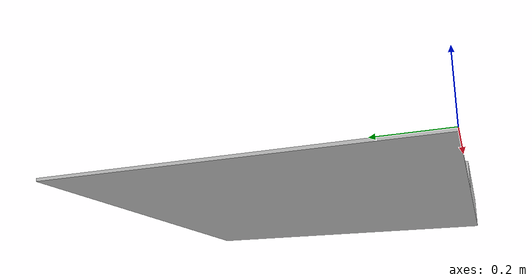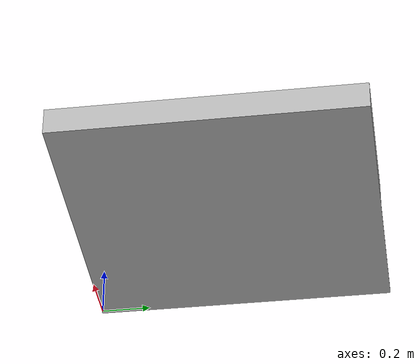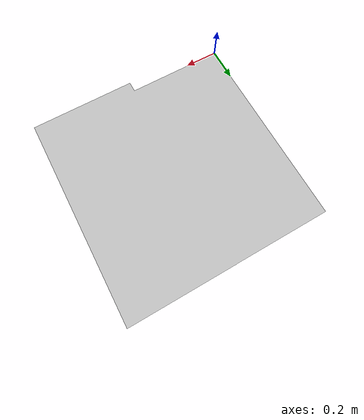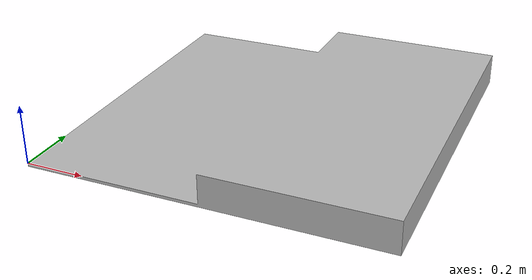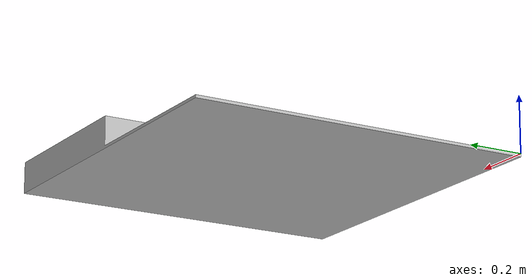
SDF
<?xml version="1.0" ?>
<sdf version="1.5">
  <model name="Step10">
        <static>true</static>
    <link name="link">
    <gravity>0</gravity>
      <collision name="collision">
        <geometry>
          <mesh>
            <scale>1 1 1</scale>
            <uri>model://step_10/meshes/step10.dae</uri>
          </mesh>
        </geometry>
      </collision>
      <visual name="visual">
        <geometry>
          <mesh>
            <scale>1 1 1</scale>
            <uri>model://step_10/meshes/step10.dae</uri>
          </mesh>
        </geometry>
      </visual>
    </link>
  </model>
</sdf>
